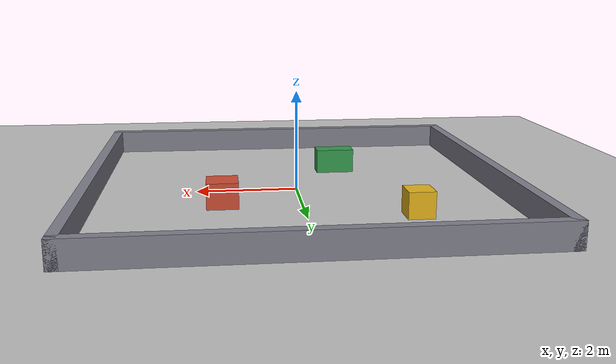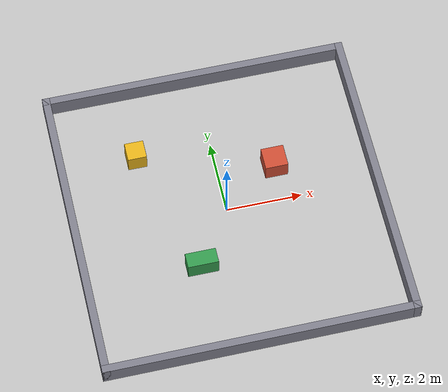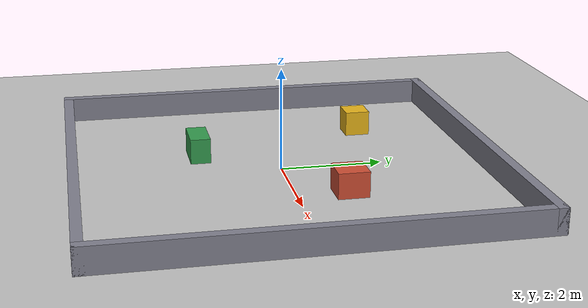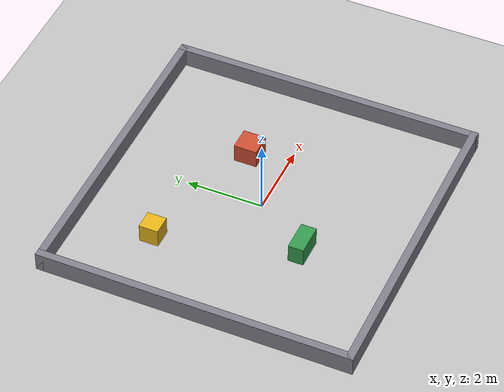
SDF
<?xml version="1.0"?>
<sdf version="1.9">
  <world name="monde_simple">

    <physics name="pas_4ms" type="ignored">
      <max_step_size>0.004</max_step_size>
      <real_time_factor>1.0</real_time_factor>
    </physics>

    <plugin filename="gz-sim-physics-system" name="gz::sim::systems::Physics"/>
    <plugin filename="gz-sim-user-commands-system" name="gz::sim::systems::UserCommands"/>
    <plugin filename="gz-sim-scene-broadcaster-system" name="gz::sim::systems::SceneBroadcaster"/>
    <plugin filename="gz-sim-sensors-system" name="gz::sim::systems::Sensors">
      <render_engine>ogre2</render_engine>
    </plugin>

    <light type="directional" name="soleil">
      <cast_shadows>false</cast_shadows>
      <pose>0 0 10 0 0 0</pose>
      <diffuse>0.9 0.9 0.9 1</diffuse>
      <specular>0.2 0.2 0.2 1</specular>
      <direction>-0.5 0.1 -0.9</direction>
    </light>

    <model name="sol">
      <static>true</static>
      <link name="link">
        <collision name="collision">
          <geometry><plane><normal>0 0 1</normal><size>20 20</size></plane></geometry>
        </collision>
        <visual name="visual">
          <geometry><plane><normal>0 0 1</normal><size>20 20</size></plane></geometry>
          <material>
            <ambient>0.75 0.75 0.75 1</ambient>
            <diffuse>0.75 0.75 0.75 1</diffuse>
          </material>
        </visual>
      </link>
    </model>

    <model name="arene">
      <static>true</static>

      <link name="mur_nord">
        <pose>0 4 0.25 0 0 0</pose>
        <collision name="c"><geometry><box><size>8.2 0.2 0.5</size></box></geometry></collision>
        <visual name="v">
          <geometry><box><size>8.2 0.2 0.5</size></box></geometry>
          <material><ambient>0.5 0.5 0.55 1</ambient><diffuse>0.5 0.5 0.55 1</diffuse></material>
        </visual>
      </link>

      <link name="mur_sud">
        <pose>0 -4 0.25 0 0 0</pose>
        <collision name="c"><geometry><box><size>8.2 0.2 0.5</size></box></geometry></collision>
        <visual name="v">
          <geometry><box><size>8.2 0.2 0.5</size></box></geometry>
          <material><ambient>0.5 0.5 0.55 1</ambient><diffuse>0.5 0.5 0.55 1</diffuse></material>
        </visual>
      </link>

      <link name="mur_est">
        <pose>4 0 0.25 0 0 0</pose>
        <collision name="c"><geometry><box><size>0.2 8.2 0.5</size></box></geometry></collision>
        <visual name="v">
          <geometry><box><size>0.2 8.2 0.5</size></box></geometry>
          <material><ambient>0.5 0.5 0.55 1</ambient><diffuse>0.5 0.5 0.55 1</diffuse></material>
        </visual>
      </link>

      <link name="mur_ouest">
        <pose>-4 0 0.25 0 0 0</pose>
        <collision name="c"><geometry><box><size>0.2 8.2 0.5</size></box></geometry></collision>
        <visual name="v">
          <geometry><box><size>0.2 8.2 0.5</size></box></geometry>
          <material><ambient>0.5 0.5 0.55 1</ambient><diffuse>0.5 0.5 0.55 1</diffuse></material>
        </visual>
      </link>

      <link name="obstacle_1">
        <pose>1.5 1.0 0.25 0 0 0</pose>
        <collision name="c"><geometry><box><size>0.6 0.6 0.5</size></box></geometry></collision>
        <visual name="v">
          <geometry><box><size>0.6 0.6 0.5</size></box></geometry>
          <material><ambient>0.8 0.3 0.2 1</ambient><diffuse>0.8 0.3 0.2 1</diffuse></material>
        </visual>
      </link>

      <link name="obstacle_2">
        <pose>-1.0 -1.5 0.25 0 0 0</pose>
        <collision name="c"><geometry><box><size>0.8 0.4 0.5</size></box></geometry></collision>
        <visual name="v">
          <geometry><box><size>0.8 0.4 0.5</size></box></geometry>
          <material><ambient>0.2 0.6 0.3 1</ambient><diffuse>0.2 0.6 0.3 1</diffuse></material>
        </visual>
      </link>

      <link name="obstacle_3">
        <pose>-2.0 2.0 0.25 0 0 0</pose>
        <collision name="c"><geometry><box><size>0.5 0.5 0.5</size></box></geometry></collision>
        <visual name="v">
          <geometry><box><size>0.5 0.5 0.5</size></box></geometry>
          <material><ambient>0.9 0.7 0.1 1</ambient><diffuse>0.9 0.7 0.1 1</diffuse></material>
        </visual>
      </link>

    </model>
  </world>
</sdf>
